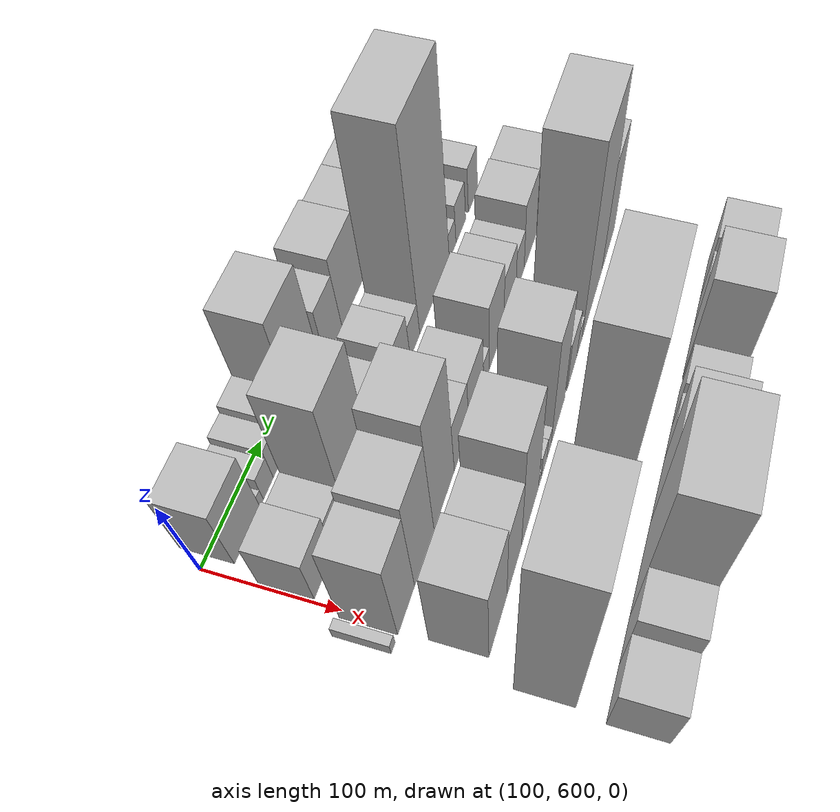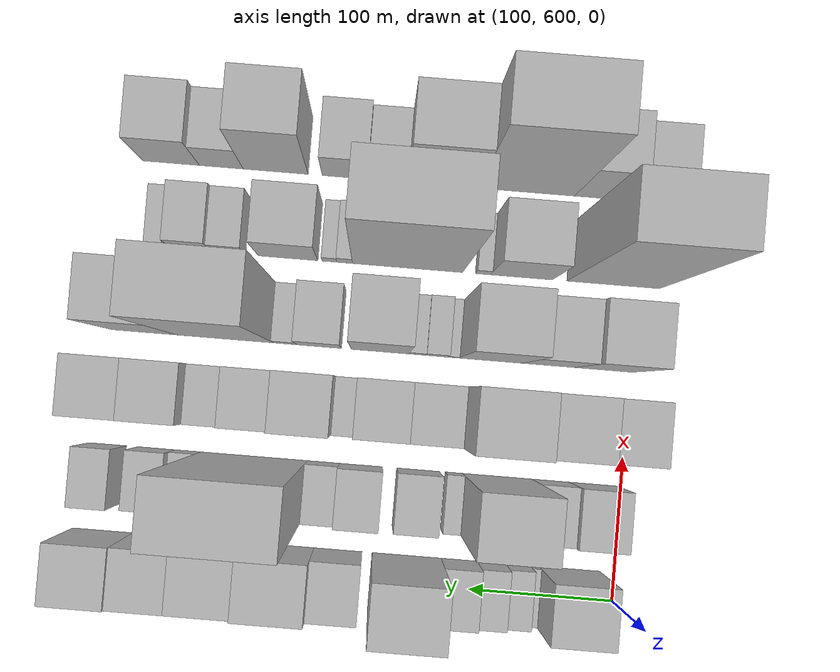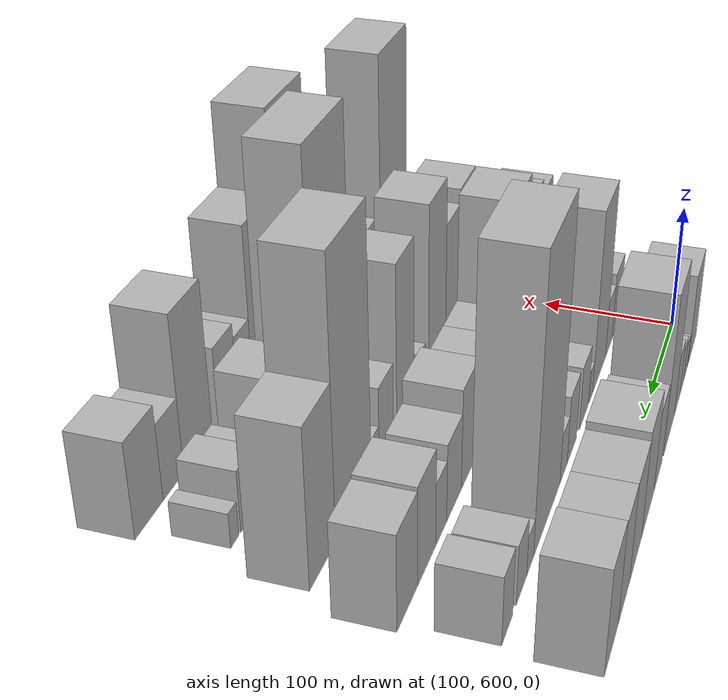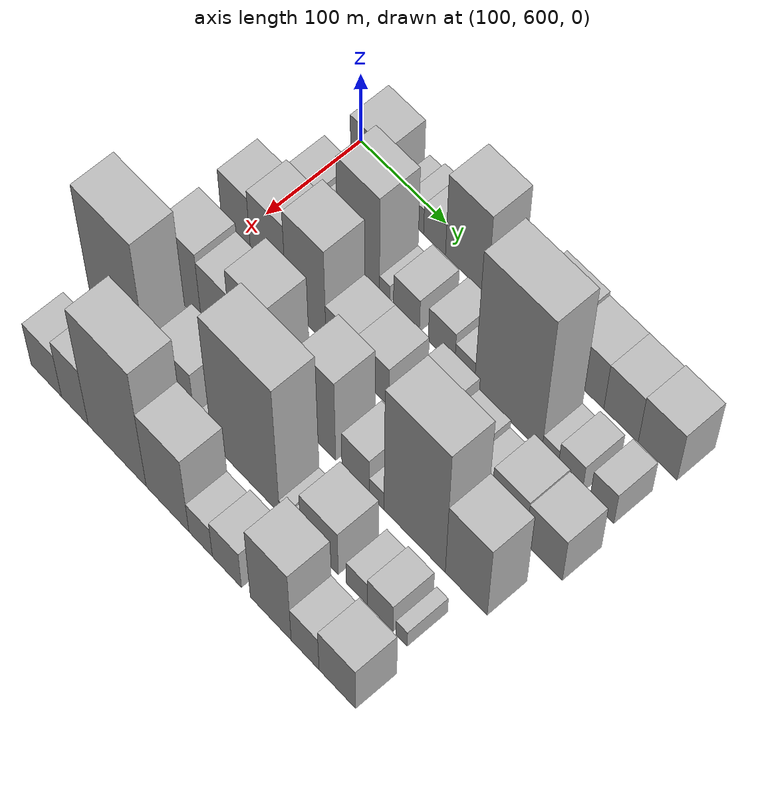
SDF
<sdf version="1.6">
 <world name="default">
  <model name="building_48">
   <static>1</static>
   <pose>100.0000 631.2782 0 0.000000 0.000000 0.000000</pose>
   <link name="link">
    <pose>0 0 37.50 0 0 0</pose>
    <collision name="collision"><geometry><box><size>40.0000 42.4311 75.0000</size></box></geometry></collision>
    <visual name="visual">
     <cast_shadows>0</cast_shadows>
     <geometry><box><size>40.0000 42.4311 75.0000</size></box></geometry>
     <material>
      <script>
       <uri>model://HANNAS_wall/materials/scripts</uri>
       <uri>model://HANNAS_wall/materials/textures</uri>
       <name>vrc/HANNAS_wall</name>
      </script>
     </material>
    </visual>
   </link>
  </model>
  <model name="building_49">
   <static>1</static>
   <pose>100.0000 655.4993 0 0.000000 0.000000 0.000000</pose>
   <link name="link">
    <pose>0 0 7.50 0 0 0</pose>
    <collision name="collision"><geometry><box><size>40.0000 6.0109 15.0000</size></box></geometry></collision>
    <visual name="visual">
     <cast_shadows>0</cast_shadows>
     <geometry><box><size>40.0000 6.0109 15.0000</size></box></geometry>
     <material>
      <script>
       <uri>model://HANNAS_wall/materials/scripts</uri>
       <uri>model://HANNAS_wall/materials/textures</uri>
       <name>vrc/HANNAS_wall</name>
      </script>
     </material>
    </visual>
   </link>
  </model>
  <model name="building_50">
   <static>1</static>
   <pose>100.0000 667.1177 0 0.000000 0.000000 0.000000</pose>
   <link name="link">
    <pose>0 0 15.00 0 0 0</pose>
    <collision name="collision"><geometry><box><size>40.0000 17.2259 30.0000</size></box></geometry></collision>
    <visual name="visual">
     <cast_shadows>0</cast_shadows>
     <geometry><box><size>40.0000 17.2259 30.0000</size></box></geometry>
     <material>
      <script>
       <uri>model://HANNAS_wall/materials/scripts</uri>
       <uri>model://HANNAS_wall/materials/textures</uri>
       <name>vrc/HANNAS_wall</name>
      </script>
     </material>
    </visual>
   </link>
  </model>
  <model name="building_51">
   <static>1</static>
   <pose>100.0000 685.6328 0 0.000000 0.000000 0.000000</pose>
   <link name="link">
    <pose>0 0 19.50 0 0 0</pose>
    <collision name="collision"><geometry><box><size>40.0000 19.8044 39.0000</size></box></geometry></collision>
    <visual name="visual">
     <cast_shadows>0</cast_shadows>
     <geometry><box><size>40.0000 19.8044 39.0000</size></box></geometry>
     <material>
      <script>
       <uri>model://HANNAS_wall/materials/scripts</uri>
       <uri>model://HANNAS_wall/materials/textures</uri>
       <name>vrc/HANNAS_wall</name>
      </script>
     </material>
    </visual>
   </link>
  </model>
  <model name="building_52">
   <static>1</static>
   <pose>100.0000 708.1960 0 0.000000 0.000000 0.000000</pose>
   <link name="link">
    <pose>0 0 24.00 0 0 0</pose>
    <collision name="collision"><geometry><box><size>40.0000 25.3219 48.0000</size></box></geometry></collision>
    <visual name="visual">
     <cast_shadows>0</cast_shadows>
     <geometry><box><size>40.0000 25.3219 48.0000</size></box></geometry>
     <material>
      <script>
       <uri>model://HANNAS_wall/materials/scripts</uri>
       <uri>model://HANNAS_wall/materials/textures</uri>
       <name>vrc/HANNAS_wall</name>
      </script>
     </material>
    </visual>
   </link>
  </model>
  <model name="building_53">
   <static>1</static>
   <pose>100.0000 744.9061 0 0.000000 0.000000 0.000000</pose>
   <link name="link">
    <pose>0 0 63.00 0 0 0</pose>
    <collision name="collision"><geometry><box><size>40.0000 48.0984 126.0000</size></box></geometry></collision>
    <visual name="visual">
     <cast_shadows>0</cast_shadows>
     <geometry><box><size>40.0000 48.0984 126.0000</size></box></geometry>
     <material>
      <script>
       <uri>model://HANNAS_wall/materials/scripts</uri>
       <uri>model://HANNAS_wall/materials/textures</uri>
       <name>vrc/HANNAS_wall</name>
      </script>
     </material>
    </visual>
   </link>
  </model>
  <model name="building_54">
   <static>1</static>
   <pose>100.0000 792.7015 0 0.000000 0.000000 0.000000</pose>
   <link name="link">
    <pose>0 0 31.50 0 0 0</pose>
    <collision name="collision"><geometry><box><size>40.0000 33.4924 63.0000</size></box></geometry></collision>
    <visual name="visual">
     <cast_shadows>0</cast_shadows>
     <geometry><box><size>40.0000 33.4924 63.0000</size></box></geometry>
     <material>
      <script>
       <uri>model://HANNAS_wall/materials/scripts</uri>
       <uri>model://HANNAS_wall/materials/textures</uri>
       <name>vrc/HANNAS_wall</name>
      </script>
     </material>
    </visual>
   </link>
  </model>
  <model name="building_55">
   <static>1</static>
   <pose>100.0000 832.7824 0 0.000000 0.000000 0.000000</pose>
   <link name="link">
    <pose>0 0 40.50 0 0 0</pose>
    <collision name="collision"><geometry><box><size>40.0000 46.6694 81.0000</size></box></geometry></collision>
    <visual name="visual">
     <cast_shadows>0</cast_shadows>
     <geometry><box><size>40.0000 46.6694 81.0000</size></box></geometry>
     <material>
      <script>
       <uri>model://HANNAS_wall/materials/scripts</uri>
       <uri>model://HANNAS_wall/materials/textures</uri>
       <name>vrc/HANNAS_wall</name>
      </script>
     </material>
    </visual>
   </link>
  </model>
  <model name="building_56">
   <static>1</static>
   <pose>100.0000 877.3833 0 0.000000 0.000000 0.000000</pose>
   <link name="link">
    <pose>0 0 37.50 0 0 0</pose>
    <collision name="collision"><geometry><box><size>40.0000 42.5324 75.0000</size></box></geometry></collision>
    <visual name="visual">
     <cast_shadows>0</cast_shadows>
     <geometry><box><size>40.0000 42.5324 75.0000</size></box></geometry>
     <material>
      <script>
       <uri>model://HANNAS_wall/materials/scripts</uri>
       <uri>model://HANNAS_wall/materials/textures</uri>
       <name>vrc/HANNAS_wall</name>
      </script>
     </material>
    </visual>
   </link>
  </model>
  <model name="building_57">
   <static>1</static>
   <pose>100.0000 917.4022 0 0.000000 0.000000 0.000000</pose>
   <link name="link">
    <pose>0 0 37.50 0 0 0</pose>
    <collision name="collision"><geometry><box><size>40.0000 37.5054 75.0000</size></box></geometry></collision>
    <visual name="visual">
     <cast_shadows>0</cast_shadows>
     <geometry><box><size>40.0000 37.5054 75.0000</size></box></geometry>
     <material>
      <script>
       <uri>model://HANNAS_wall/materials/scripts</uri>
       <uri>model://HANNAS_wall/materials/textures</uri>
       <name>vrc/HANNAS_wall</name>
      </script>
     </material>
    </visual>
   </link>
  </model>
  <model name="building_58">
   <static>1</static>
   <pose>100.0000 957.1171 0 0.000000 0.000000 0.000000</pose>
   <link name="link">
    <pose>0 0 39.00 0 0 0</pose>
    <collision name="collision"><geometry><box><size>40.0000 41.9244 78.0000</size></box></geometry></collision>
    <visual name="visual">
     <cast_shadows>0</cast_shadows>
     <geometry><box><size>40.0000 41.9244 78.0000</size></box></geometry>
     <material>
      <script>
       <uri>model://HANNAS_wall/materials/scripts</uri>
       <uri>model://HANNAS_wall/materials/textures</uri>
       <name>vrc/HANNAS_wall</name>
      </script>
     </material>
    </visual>
   </link>
  </model>
  <model name="building_106">
   <static>1</static>
   <pose>160.0000 619.1877 0 0.000000 0.000000 0.000000</pose>
   <link name="link">
    <pose>0 0 28.50 0 0 0</pose>
    <collision name="collision"><geometry><box><size>40.0000 33.5609 57.0000</size></box></geometry></collision>
    <visual name="visual">
     <cast_shadows>0</cast_shadows>
     <geometry><box><size>40.0000 33.5609 57.0000</size></box></geometry>
     <material>
      <script>
       <uri>model://HANNAS_wall/materials/scripts</uri>
       <uri>model://HANNAS_wall/materials/textures</uri>
       <name>vrc/HANNAS_wall</name>
      </script>
     </material>
    </visual>
   </link>
  </model>
  <model name="building_107">
   <static>1</static>
   <pose>160.0000 648.9834 0 0.000000 0.000000 0.000000</pose>
   <link name="link">
    <pose>0 0 24.00 0 0 0</pose>
    <collision name="collision"><geometry><box><size>40.0000 26.0305 48.0000</size></box></geometry></collision>
    <visual name="visual">
     <cast_shadows>0</cast_shadows>
     <geometry><box><size>40.0000 26.0305 48.0000</size></box></geometry>
     <material>
      <script>
       <uri>model://HANNAS_wall/materials/scripts</uri>
       <uri>model://HANNAS_wall/materials/textures</uri>
       <name>vrc/HANNAS_wall</name>
      </script>
     </material>
    </visual>
   </link>
  </model>
  <model name="building_108">
   <static>1</static>
   <pose>160.0000 686.3390 0 0.000000 0.000000 0.000000</pose>
   <link name="link">
    <pose>0 0 73.50 0 0 0</pose>
    <collision name="collision"><geometry><box><size>40.0000 48.6807 147.0000</size></box></geometry></collision>
    <visual name="visual">
     <cast_shadows>0</cast_shadows>
     <geometry><box><size>40.0000 48.6807 147.0000</size></box></geometry>
     <material>
      <script>
       <uri>model://HANNAS_wall/materials/scripts</uri>
       <uri>model://HANNAS_wall/materials/textures</uri>
       <name>vrc/HANNAS_wall</name>
      </script>
     </material>
    </visual>
   </link>
  </model>
  <model name="building_109">
   <static>1</static>
   <pose>160.0000 716.7340 0 0.000000 0.000000 0.000000</pose>
   <link name="link">
    <pose>0 0 13.50 0 0 0</pose>
    <collision name="collision"><geometry><box><size>40.0000 12.1093 27.0000</size></box></geometry></collision>
    <visual name="visual">
     <cast_shadows>0</cast_shadows>
     <geometry><box><size>40.0000 12.1093 27.0000</size></box></geometry>
     <material>
      <script>
       <uri>model://HANNAS_wall/materials/scripts</uri>
       <uri>model://HANNAS_wall/materials/textures</uri>
       <name>vrc/HANNAS_wall</name>
      </script>
     </material>
    </visual>
   </link>
  </model>
  <model name="building_110">
   <static>1</static>
   <pose>160.0000 741.7140 0 0.000000 0.000000 0.000000</pose>
   <link name="link">
    <pose>0 0 25.50 0 0 0</pose>
    <collision name="collision"><geometry><box><size>40.0000 29.8505 51.0000</size></box></geometry></collision>
    <visual name="visual">
     <cast_shadows>0</cast_shadows>
     <geometry><box><size>40.0000 29.8505 51.0000</size></box></geometry>
     <material>
      <script>
       <uri>model://HANNAS_wall/materials/scripts</uri>
       <uri>model://HANNAS_wall/materials/textures</uri>
       <name>vrc/HANNAS_wall</name>
      </script>
     </material>
    </visual>
   </link>
  </model>
  <model name="building_111">
   <static>1</static>
   <pose>160.0000 781.6407 0 0.000000 0.000000 0.000000</pose>
   <link name="link">
    <pose>0 0 27.00 0 0 0</pose>
    <collision name="collision"><geometry><box><size>40.0000 30.0029 54.0000</size></box></geometry></collision>
    <visual name="visual">
     <cast_shadows>0</cast_shadows>
     <geometry><box><size>40.0000 30.0029 54.0000</size></box></geometry>
     <material>
      <script>
       <uri>model://HANNAS_wall/materials/scripts</uri>
       <uri>model://HANNAS_wall/materials/textures</uri>
       <name>vrc/HANNAS_wall</name>
      </script>
     </material>
    </visual>
   </link>
  </model>
  <model name="building_112">
   <static>1</static>
   <pose>160.0000 807.7621 0 0.000000 0.000000 0.000000</pose>
   <link name="link">
    <pose>0 0 19.50 0 0 0</pose>
    <collision name="collision"><geometry><box><size>40.0000 22.2398 39.0000</size></box></geometry></collision>
    <visual name="visual">
     <cast_shadows>0</cast_shadows>
     <geometry><box><size>40.0000 22.2398 39.0000</size></box></geometry>
     <material>
      <script>
       <uri>model://HANNAS_wall/materials/scripts</uri>
       <uri>model://HANNAS_wall/materials/textures</uri>
       <name>vrc/HANNAS_wall</name>
      </script>
     </material>
    </visual>
   </link>
  </model>
  <model name="building_113">
   <static>1</static>
   <pose>160.0000 856.2191 0 0.000000 0.000000 0.000000</pose>
   <link name="link">
    <pose>0 0 108.00 0 0 0</pose>
    <collision name="collision"><geometry><box><size>40.0000 74.6743 216.0000</size></box></geometry></collision>
    <visual name="visual">
     <cast_shadows>0</cast_shadows>
     <geometry><box><size>40.0000 74.6743 216.0000</size></box></geometry>
     <material>
      <script>
       <uri>model://HANNAS_wall/materials/scripts</uri>
       <uri>model://HANNAS_wall/materials/textures</uri>
       <name>vrc/HANNAS_wall</name>
      </script>
     </material>
    </visual>
   </link>
  </model>
  <model name="building_114">
   <static>1</static>
   <pose>160.0000 902.4740 0 0.000000 0.000000 0.000000</pose>
   <link name="link">
    <pose>0 0 15.00 0 0 0</pose>
    <collision name="collision"><geometry><box><size>40.0000 17.8355 30.0000</size></box></geometry></collision>
    <visual name="visual">
     <cast_shadows>0</cast_shadows>
     <geometry><box><size>40.0000 17.8355 30.0000</size></box></geometry>
     <material>
      <script>
       <uri>model://HANNAS_wall/materials/scripts</uri>
       <uri>model://HANNAS_wall/materials/textures</uri>
       <name>vrc/HANNAS_wall</name>
      </script>
     </material>
    </visual>
   </link>
  </model>
  <model name="building_115">
   <static>1</static>
   <pose>160.0000 924.5829 0 0.000000 0.000000 0.000000</pose>
   <link name="link">
    <pose>0 0 22.50 0 0 0</pose>
    <collision name="collision"><geometry><box><size>40.0000 26.3824 45.0000</size></box></geometry></collision>
    <visual name="visual">
     <cast_shadows>0</cast_shadows>
     <geometry><box><size>40.0000 26.3824 45.0000</size></box></geometry>
     <material>
      <script>
       <uri>model://HANNAS_wall/materials/scripts</uri>
       <uri>model://HANNAS_wall/materials/textures</uri>
       <name>vrc/HANNAS_wall</name>
      </script>
     </material>
    </visual>
   </link>
  </model>
  <model name="building_116">
   <static>1</static>
   <pose>160.0000 958.8274 0 0.000000 0.000000 0.000000</pose>
   <link name="link">
    <pose>0 0 25.50 0 0 0</pose>
    <collision name="collision"><geometry><box><size>40.0000 26.1067 51.0000</size></box></geometry></collision>
    <visual name="visual">
     <cast_shadows>0</cast_shadows>
     <geometry><box><size>40.0000 26.1067 51.0000</size></box></geometry>
     <material>
      <script>
       <uri>model://HANNAS_wall/materials/scripts</uri>
       <uri>model://HANNAS_wall/materials/textures</uri>
       <name>vrc/HANNAS_wall</name>
      </script>
     </material>
    </visual>
   </link>
  </model>
  <model name="building_157">
   <static>1</static>
   <pose>220.0000 586.6365 0 0.000000 0.000000 0.000000</pose>
   <link name="link">
    <pose>0 0 7.50 0 0 0</pose>
    <collision name="collision"><geometry><box><size>40.0000 7.4755 15.0000</size></box></geometry></collision>
    <visual name="visual">
     <cast_shadows>0</cast_shadows>
     <geometry><box><size>40.0000 7.4755 15.0000</size></box></geometry>
     <material>
      <script>
       <uri>model://HANNAS_wall/materials/scripts</uri>
       <uri>model://HANNAS_wall/materials/textures</uri>
       <name>vrc/HANNAS_wall</name>
      </script>
     </material>
    </visual>
   </link>
  </model>
  <model name="building_158">
   <static>1</static>
   <pose>220.0000 612.2362 0 0.000000 0.000000 0.000000</pose>
   <link name="link">
    <pose>0 0 55.50 0 0 0</pose>
    <collision name="collision"><geometry><box><size>40.0000 33.7239 111.0000</size></box></geometry></collision>
    <visual name="visual">
     <cast_shadows>0</cast_shadows>
     <geometry><box><size>40.0000 33.7239 111.0000</size></box></geometry>
     <material>
      <script>
       <uri>model://HANNAS_wall/materials/scripts</uri>
       <uri>model://HANNAS_wall/materials/textures</uri>
       <name>vrc/HANNAS_wall</name>
      </script>
     </material>
    </visual>
   </link>
  </model>
  <model name="building_159">
   <static>1</static>
   <pose>220.0000 649.5706 0 0.000000 0.000000 0.000000</pose>
   <link name="link">
    <pose>0 0 61.50 0 0 0</pose>
    <collision name="collision"><geometry><box><size>40.0000 40.9449 123.0000</size></box></geometry></collision>
    <visual name="visual">
     <cast_shadows>0</cast_shadows>
     <geometry><box><size>40.0000 40.9449 123.0000</size></box></geometry>
     <material>
      <script>
       <uri>model://HANNAS_wall/materials/scripts</uri>
       <uri>model://HANNAS_wall/materials/textures</uri>
       <name>vrc/HANNAS_wall</name>
      </script>
     </material>
    </visual>
   </link>
  </model>
  <model name="building_160">
   <static>1</static>
   <pose>220.0000 693.0669 0 0.000000 0.000000 0.000000</pose>
   <link name="link">
    <pose>0 0 73.50 0 0 0</pose>
    <collision name="collision"><geometry><box><size>40.0000 46.0477 147.0000</size></box></geometry></collision>
    <visual name="visual">
     <cast_shadows>0</cast_shadows>
     <geometry><box><size>40.0000 46.0477 147.0000</size></box></geometry>
     <material>
      <script>
       <uri>model://HANNAS_wall/materials/scripts</uri>
       <uri>model://HANNAS_wall/materials/textures</uri>
       <name>vrc/HANNAS_wall</name>
      </script>
     </material>
    </visual>
   </link>
  </model>
  <model name="building_161">
   <static>1</static>
   <pose>220.0000 733.4533 0 0.000000 0.000000 0.000000</pose>
   <link name="link">
    <pose>0 0 31.50 0 0 0</pose>
    <collision name="collision"><geometry><box><size>40.0000 34.7250 63.0000</size></box></geometry></collision>
    <visual name="visual">
     <cast_shadows>0</cast_shadows>
     <geometry><box><size>40.0000 34.7250 63.0000</size></box></geometry>
     <material>
      <script>
       <uri>model://HANNAS_wall/materials/scripts</uri>
       <uri>model://HANNAS_wall/materials/textures</uri>
       <name>vrc/HANNAS_wall</name>
      </script>
     </material>
    </visual>
   </link>
  </model>
  <model name="building_162">
   <static>1</static>
   <pose>220.0000 769.5083 0 0.000000 0.000000 0.000000</pose>
   <link name="link">
    <pose>0 0 31.50 0 0 0</pose>
    <collision name="collision"><geometry><box><size>40.0000 37.3852 63.0000</size></box></geometry></collision>
    <visual name="visual">
     <cast_shadows>0</cast_shadows>
     <geometry><box><size>40.0000 37.3852 63.0000</size></box></geometry>
     <material>
      <script>
       <uri>model://HANNAS_wall/materials/scripts</uri>
       <uri>model://HANNAS_wall/materials/textures</uri>
       <name>vrc/HANNAS_wall</name>
      </script>
     </material>
    </visual>
   </link>
  </model>
  <model name="building_163">
   <static>1</static>
   <pose>220.0000 795.8028 0 0.000000 0.000000 0.000000</pose>
   <link name="link">
    <pose>0 0 15.00 0 0 0</pose>
    <collision name="collision"><geometry><box><size>40.0000 15.2037 30.0000</size></box></geometry></collision>
    <visual name="visual">
     <cast_shadows>0</cast_shadows>
     <geometry><box><size>40.0000 15.2037 30.0000</size></box></geometry>
     <material>
      <script>
       <uri>model://HANNAS_wall/materials/scripts</uri>
       <uri>model://HANNAS_wall/materials/textures</uri>
       <name>vrc/HANNAS_wall</name>
      </script>
     </material>
    </visual>
   </link>
  </model>
  <model name="building_164">
   <static>1</static>
   <pose>220.0000 823.3420 0 0.000000 0.000000 0.000000</pose>
   <link name="link">
    <pose>0 0 39.00 0 0 0</pose>
    <collision name="collision"><geometry><box><size>40.0000 39.8747 78.0000</size></box></geometry></collision>
    <visual name="visual">
     <cast_shadows>0</cast_shadows>
     <geometry><box><size>40.0000 39.8747 78.0000</size></box></geometry>
     <material>
      <script>
       <uri>model://HANNAS_wall/materials/scripts</uri>
       <uri>model://HANNAS_wall/materials/textures</uri>
       <name>vrc/HANNAS_wall</name>
      </script>
     </material>
    </visual>
   </link>
  </model>
  <model name="building_165">
   <static>1</static>
   <pose>220.0000 860.3663 0 0.000000 0.000000 0.000000</pose>
   <link name="link">
    <pose>0 0 30.00 0 0 0</pose>
    <collision name="collision"><geometry><box><size>40.0000 34.1740 60.0000</size></box></geometry></collision>
    <visual name="visual">
     <cast_shadows>0</cast_shadows>
     <geometry><box><size>40.0000 34.1740 60.0000</size></box></geometry>
     <material>
      <script>
       <uri>model://HANNAS_wall/materials/scripts</uri>
       <uri>model://HANNAS_wall/materials/textures</uri>
       <name>vrc/HANNAS_wall</name>
      </script>
     </material>
    </visual>
   </link>
  </model>
  <model name="building_166">
   <static>1</static>
   <pose>220.0000 889.5216 0 0.000000 0.000000 0.000000</pose>
   <link name="link">
    <pose>0 0 24.00 0 0 0</pose>
    <collision name="collision"><geometry><box><size>40.0000 24.1367 48.0000</size></box></geometry></collision>
    <visual name="visual">
     <cast_shadows>0</cast_shadows>
     <geometry><box><size>40.0000 24.1367 48.0000</size></box></geometry>
     <material>
      <script>
       <uri>model://HANNAS_wall/materials/scripts</uri>
       <uri>model://HANNAS_wall/materials/textures</uri>
       <name>vrc/HANNAS_wall</name>
      </script>
     </material>
    </visual>
   </link>
  </model>
  <model name="building_167">
   <static>1</static>
   <pose>220.0000 920.6134 0 0.000000 0.000000 0.000000</pose>
   <link name="link">
    <pose>0 0 37.50 0 0 0</pose>
    <collision name="collision"><geometry><box><size>40.0000 38.0468 75.0000</size></box></geometry></collision>
    <visual name="visual">
     <cast_shadows>0</cast_shadows>
     <geometry><box><size>40.0000 38.0468 75.0000</size></box></geometry>
     <material>
      <script>
       <uri>model://HANNAS_wall/materials/scripts</uri>
       <uri>model://HANNAS_wall/materials/textures</uri>
       <name>vrc/HANNAS_wall</name>
      </script>
     </material>
    </visual>
   </link>
  </model>
  <model name="building_168">
   <static>1</static>
   <pose>220.0000 959.4783 0 0.000000 0.000000 0.000000</pose>
   <link name="link">
    <pose>0 0 36.00 0 0 0</pose>
    <collision name="collision"><geometry><box><size>40.0000 39.6830 72.0000</size></box></geometry></collision>
    <visual name="visual">
     <cast_shadows>0</cast_shadows>
     <geometry><box><size>40.0000 39.6830 72.0000</size></box></geometry>
     <material>
      <script>
       <uri>model://HANNAS_wall/materials/scripts</uri>
       <uri>model://HANNAS_wall/materials/textures</uri>
       <name>vrc/HANNAS_wall</name>
      </script>
     </material>
    </visual>
   </link>
  </model>
  <model name="building_210">
   <static>1</static>
   <pose>280.0000 618.6021 0 0.000000 0.000000 0.000000</pose>
   <link name="link">
    <pose>0 0 55.50 0 0 0</pose>
    <collision name="collision"><geometry><box><size>40.0000 41.5093 111.0000</size></box></geometry></collision>
    <visual name="visual">
     <cast_shadows>0</cast_shadows>
     <geometry><box><size>40.0000 41.5093 111.0000</size></box></geometry>
     <material>
      <script>
       <uri>model://HANNAS_wall/materials/scripts</uri>
       <uri>model://HANNAS_wall/materials/textures</uri>
       <name>vrc/HANNAS_wall</name>
      </script>
     </material>
    </visual>
   </link>
  </model>
  <model name="building_211">
   <static>1</static>
   <pose>280.0000 657.3192 0 0.000000 0.000000 0.000000</pose>
   <link name="link">
    <pose>0 0 49.50 0 0 0</pose>
    <collision name="collision"><geometry><box><size>40.0000 35.9250 99.0000</size></box></geometry></collision>
    <visual name="visual">
     <cast_shadows>0</cast_shadows>
     <geometry><box><size>40.0000 35.9250 99.0000</size></box></geometry>
     <material>
      <script>
       <uri>model://HANNAS_wall/materials/scripts</uri>
       <uri>model://HANNAS_wall/materials/textures</uri>
       <name>vrc/HANNAS_wall</name>
      </script>
     </material>
    </visual>
   </link>
  </model>
  <model name="building_212">
   <static>1</static>
   <pose>280.0000 697.5575 0 0.000000 0.000000 0.000000</pose>
   <link name="link">
    <pose>0 0 69.00 0 0 0</pose>
    <collision name="collision"><geometry><box><size>40.0000 44.5516 138.0000</size></box></geometry></collision>
    <visual name="visual">
     <cast_shadows>0</cast_shadows>
     <geometry><box><size>40.0000 44.5516 138.0000</size></box></geometry>
     <material>
      <script>
       <uri>model://HANNAS_wall/materials/scripts</uri>
       <uri>model://HANNAS_wall/materials/textures</uri>
       <name>vrc/HANNAS_wall</name>
      </script>
     </material>
    </visual>
   </link>
  </model>
  <model name="building_213">
   <static>1</static>
   <pose>280.0000 723.5657 0 0.000000 0.000000 0.000000</pose>
   <link name="link">
    <pose>0 0 7.50 0 0 0</pose>
    <collision name="collision"><geometry><box><size>40.0000 7.4647 15.0000</size></box></geometry></collision>
    <visual name="visual">
     <cast_shadows>0</cast_shadows>
     <geometry><box><size>40.0000 7.4647 15.0000</size></box></geometry>
     <material>
      <script>
       <uri>model://HANNAS_wall/materials/scripts</uri>
       <uri>model://HANNAS_wall/materials/textures</uri>
       <name>vrc/HANNAS_wall</name>
      </script>
     </material>
    </visual>
   </link>
  </model>
  <model name="building_214">
   <static>1</static>
   <pose>280.0000 735.1990 0 0.000000 0.000000 0.000000</pose>
   <link name="link">
    <pose>0 0 15.00 0 0 0</pose>
    <collision name="collision"><geometry><box><size>40.0000 15.8019 30.0000</size></box></geometry></collision>
    <visual name="visual">
     <cast_shadows>0</cast_shadows>
     <geometry><box><size>40.0000 15.8019 30.0000</size></box></geometry>
     <material>
      <script>
       <uri>model://HANNAS_wall/materials/scripts</uri>
       <uri>model://HANNAS_wall/materials/textures</uri>
       <name>vrc/HANNAS_wall</name>
      </script>
     </material>
    </visual>
   </link>
  </model>
  <model name="building_215">
   <static>1</static>
   <pose>280.0000 749.0518 0 0.000000 0.000000 0.000000</pose>
   <link name="link">
    <pose>0 0 13.50 0 0 0</pose>
    <collision name="collision"><geometry><box><size>40.0000 11.9036 27.0000</size></box></geometry></collision>
    <visual name="visual">
     <cast_shadows>0</cast_shadows>
     <geometry><box><size>40.0000 11.9036 27.0000</size></box></geometry>
     <material>
      <script>
       <uri>model://HANNAS_wall/materials/scripts</uri>
       <uri>model://HANNAS_wall/materials/textures</uri>
       <name>vrc/HANNAS_wall</name>
      </script>
     </material>
    </visual>
   </link>
  </model>
  <model name="building_216">
   <static>1</static>
   <pose>280.0000 774.9124 0 0.000000 0.000000 0.000000</pose>
   <link name="link">
    <pose>0 0 66.00 0 0 0</pose>
    <collision name="collision"><geometry><box><size>40.0000 39.8175 132.0000</size></box></geometry></collision>
    <visual name="visual">
     <cast_shadows>0</cast_shadows>
     <geometry><box><size>40.0000 39.8175 132.0000</size></box></geometry>
     <material>
      <script>
       <uri>model://HANNAS_wall/materials/scripts</uri>
       <uri>model://HANNAS_wall/materials/textures</uri>
       <name>vrc/HANNAS_wall</name>
      </script>
     </material>
    </visual>
   </link>
  </model>
  <model name="building_217">
   <static>1</static>
   <pose>280.0000 817.2269 0 0.000000 0.000000 0.000000</pose>
   <link name="link">
    <pose>0 0 30.00 0 0 0</pose>
    <collision name="collision"><geometry><box><size>40.0000 30.8115 60.0000</size></box></geometry></collision>
    <visual name="visual">
     <cast_shadows>0</cast_shadows>
     <geometry><box><size>40.0000 30.8115 60.0000</size></box></geometry>
     <material>
      <script>
       <uri>model://HANNAS_wall/materials/scripts</uri>
       <uri>model://HANNAS_wall/materials/textures</uri>
       <name>vrc/HANNAS_wall</name>
      </script>
     </material>
    </visual>
   </link>
  </model>
  <model name="building_218">
   <static>1</static>
   <pose>280.0000 840.8599 0 0.000000 0.000000 0.000000</pose>
   <link name="link">
    <pose>0 0 15.00 0 0 0</pose>
    <collision name="collision"><geometry><box><size>40.0000 16.4546 30.0000</size></box></geometry></collision>
    <visual name="visual">
     <cast_shadows>0</cast_shadows>
     <geometry><box><size>40.0000 16.4546 30.0000</size></box></geometry>
     <material>
      <script>
       <uri>model://HANNAS_wall/materials/scripts</uri>
       <uri>model://HANNAS_wall/materials/textures</uri>
       <name>vrc/HANNAS_wall</name>
      </script>
     </material>
    </visual>
   </link>
  </model>
  <model name="building_219">
   <static>1</static>
   <pose>280.0000 882.9304 0 0.000000 0.000000 0.000000</pose>
   <link name="link">
    <pose>0 0 103.50 0 0 0</pose>
    <collision name="collision"><geometry><box><size>40.0000 67.6862 207.0000</size></box></geometry></collision>
    <visual name="visual">
     <cast_shadows>0</cast_shadows>
     <geometry><box><size>40.0000 67.6862 207.0000</size></box></geometry>
     <material>
      <script>
       <uri>model://HANNAS_wall/materials/scripts</uri>
       <uri>model://HANNAS_wall/materials/textures</uri>
       <name>vrc/HANNAS_wall</name>
      </script>
     </material>
    </visual>
   </link>
  </model>
  <model name="building_220">
   <static>1</static>
   <pose>280.0000 939.5464 0 0.000000 0.000000 0.000000</pose>
   <link name="link">
    <pose>0 0 60.00 0 0 0</pose>
    <collision name="collision"><geometry><box><size>40.0000 45.5458 120.0000</size></box></geometry></collision>
    <visual name="visual">
     <cast_shadows>0</cast_shadows>
     <geometry><box><size>40.0000 45.5458 120.0000</size></box></geometry>
     <material>
      <script>
       <uri>model://HANNAS_wall/materials/scripts</uri>
       <uri>model://HANNAS_wall/materials/textures</uri>
       <name>vrc/HANNAS_wall</name>
      </script>
     </material>
    </visual>
   </link>
  </model>
  <model name="building_262">
   <static>1</static>
   <pose>340.0000 615.9587 0 0.000000 0.000000 0.000000</pose>
   <link name="link">
    <pose>0 0 106.50 0 0 0</pose>
    <collision name="collision"><geometry><box><size>40.0000 65.2022 213.0000</size></box></geometry></collision>
    <visual name="visual">
     <cast_shadows>0</cast_shadows>
     <geometry><box><size>40.0000 65.2022 213.0000</size></box></geometry>
     <material>
      <script>
       <uri>model://HANNAS_wall/materials/scripts</uri>
       <uri>model://HANNAS_wall/materials/textures</uri>
       <name>vrc/HANNAS_wall</name>
      </script>
     </material>
    </visual>
   </link>
  </model>
  <model name="building_263">
   <static>1</static>
   <pose>340.0000 680.4985 0 0.000000 0.000000 0.000000</pose>
   <link name="link">
    <pose>0 0 43.50 0 0 0</pose>
    <collision name="collision"><geometry><box><size>40.0000 43.8773 87.0000</size></box></geometry></collision>
    <visual name="visual">
     <cast_shadows>0</cast_shadows>
     <geometry><box><size>40.0000 43.8773 87.0000</size></box></geometry>
     <material>
      <script>
       <uri>model://HANNAS_wall/materials/scripts</uri>
       <uri>model://HANNAS_wall/materials/textures</uri>
       <name>vrc/HANNAS_wall</name>
      </script>
     </material>
    </visual>
   </link>
  </model>
  <model name="building_264">
   <static>1</static>
   <pose>340.0000 707.5894 0 0.000000 0.000000 0.000000</pose>
   <link name="link">
    <pose>0 0 10.50 0 0 0</pose>
    <collision name="collision"><geometry><box><size>40.0000 10.3046 21.0000</size></box></geometry></collision>
    <visual name="visual">
     <cast_shadows>0</cast_shadows>
     <geometry><box><size>40.0000 10.3046 21.0000</size></box></geometry>
     <material>
      <script>
       <uri>model://HANNAS_wall/materials/scripts</uri>
       <uri>model://HANNAS_wall/materials/textures</uri>
       <name>vrc/HANNAS_wall</name>
      </script>
     </material>
    </visual>
   </link>
  </model>
  <model name="building_265">
   <static>1</static>
   <pose>340.0000 760.4077 0 0.000000 0.000000 0.000000</pose>
   <link name="link">
    <pose>0 0 105.00 0 0 0</pose>
    <collision name="collision"><geometry><box><size>40.0000 77.3319 210.0000</size></box></geometry></collision>
    <visual name="visual">
     <cast_shadows>0</cast_shadows>
     <geometry><box><size>40.0000 77.3319 210.0000</size></box></geometry>
     <material>
      <script>
       <uri>model://HANNAS_wall/materials/scripts</uri>
       <uri>model://HANNAS_wall/materials/textures</uri>
       <name>vrc/HANNAS_wall</name>
      </script>
     </material>
    </visual>
   </link>
  </model>
  <model name="building_266">
   <static>1</static>
   <pose>340.0000 804.5996 0 0.000000 0.000000 0.000000</pose>
   <link name="link">
    <pose>0 0 12.00 0 0 0</pose>
    <collision name="collision"><geometry><box><size>40.0000 11.0520 24.0000</size></box></geometry></collision>
    <visual name="visual">
     <cast_shadows>0</cast_shadows>
     <geometry><box><size>40.0000 11.0520 24.0000</size></box></geometry>
     <material>
      <script>
       <uri>model://HANNAS_wall/materials/scripts</uri>
       <uri>model://HANNAS_wall/materials/textures</uri>
       <name>vrc/HANNAS_wall</name>
      </script>
     </material>
    </visual>
   </link>
  </model>
  <model name="building_267">
   <static>1</static>
   <pose>340.0000 815.2268 0 0.000000 0.000000 0.000000</pose>
   <link name="link">
    <pose>0 0 10.50 0 0 0</pose>
    <collision name="collision"><geometry><box><size>40.0000 10.2025 21.0000</size></box></geometry></collision>
    <visual name="visual">
     <cast_shadows>0</cast_shadows>
     <geometry><box><size>40.0000 10.2025 21.0000</size></box></geometry>
     <material>
      <script>
       <uri>model://HANNAS_wall/materials/scripts</uri>
       <uri>model://HANNAS_wall/materials/textures</uri>
       <name>vrc/HANNAS_wall</name>
      </script>
     </material>
    </visual>
   </link>
  </model>
  <model name="building_268">
   <static>1</static>
   <pose>340.0000 844.2635 0 0.000000 0.000000 0.000000</pose>
   <link name="link">
    <pose>0 0 37.50 0 0 0</pose>
    <collision name="collision"><geometry><box><size>40.0000 41.8707 75.0000</size></box></geometry></collision>
    <visual name="visual">
     <cast_shadows>0</cast_shadows>
     <geometry><box><size>40.0000 41.8707 75.0000</size></box></geometry>
     <material>
      <script>
       <uri>model://HANNAS_wall/materials/scripts</uri>
       <uri>model://HANNAS_wall/materials/textures</uri>
       <name>vrc/HANNAS_wall</name>
      </script>
     </material>
    </visual>
   </link>
  </model>
  <model name="building_269">
   <static>1</static>
   <pose>340.0000 885.7918 0 0.000000 0.000000 0.000000</pose>
   <link name="link">
    <pose>0 0 19.50 0 0 0</pose>
    <collision name="collision"><geometry><box><size>40.0000 23.1860 39.0000</size></box></geometry></collision>
    <visual name="visual">
     <cast_shadows>0</cast_shadows>
     <geometry><box><size>40.0000 23.1860 39.0000</size></box></geometry>
     <material>
      <script>
       <uri>model://HANNAS_wall/materials/scripts</uri>
       <uri>model://HANNAS_wall/materials/textures</uri>
       <name>vrc/HANNAS_wall</name>
      </script>
     </material>
    </visual>
   </link>
  </model>
  <model name="building_270">
   <static>1</static>
   <pose>340.0000 911.4681 0 0.000000 0.000000 0.000000</pose>
   <link name="link">
    <pose>0 0 24.00 0 0 0</pose>
    <collision name="collision"><geometry><box><size>40.0000 28.1666 48.0000</size></box></geometry></collision>
    <visual name="visual">
     <cast_shadows>0</cast_shadows>
     <geometry><box><size>40.0000 28.1666 48.0000</size></box></geometry>
     <material>
      <script>
       <uri>model://HANNAS_wall/materials/scripts</uri>
       <uri>model://HANNAS_wall/materials/textures</uri>
       <name>vrc/HANNAS_wall</name>
      </script>
     </material>
    </visual>
   </link>
  </model>
  <model name="building_271">
   <static>1</static>
   <pose>340.0000 934.8178 0 0.000000 0.000000 0.000000</pose>
   <link name="link">
    <pose>0 0 13.50 0 0 0</pose>
    <collision name="collision"><geometry><box><size>40.0000 12.5328 27.0000</size></box></geometry></collision>
    <visual name="visual">
     <cast_shadows>0</cast_shadows>
     <geometry><box><size>40.0000 12.5328 27.0000</size></box></geometry>
     <material>
      <script>
       <uri>model://HANNAS_wall/materials/scripts</uri>
       <uri>model://HANNAS_wall/materials/textures</uri>
       <name>vrc/HANNAS_wall</name>
      </script>
     </material>
    </visual>
   </link>
  </model>
  <model name="building_313">
   <static>1</static>
   <pose>400.0000 597.3429 0 0.000000 0.000000 0.000000</pose>
   <link name="link">
    <pose>0 0 34.50 0 0 0</pose>
    <collision name="collision"><geometry><box><size>40.0000 36.6406 69.0000</size></box></geometry></collision>
    <visual name="visual">
     <cast_shadows>0</cast_shadows>
     <geometry><box><size>40.0000 36.6406 69.0000</size></box></geometry>
     <material>
      <script>
       <uri>model://HANNAS_wall/materials/scripts</uri>
       <uri>model://HANNAS_wall/materials/textures</uri>
       <name>vrc/HANNAS_wall</name>
      </script>
     </material>
    </visual>
   </link>
  </model>
  <model name="building_314">
   <static>1</static>
   <pose>400.0000 631.6851 0 0.000000 0.000000 0.000000</pose>
   <link name="link">
    <pose>0 0 46.50 0 0 0</pose>
    <collision name="collision"><geometry><box><size>40.0000 32.0437 93.0000</size></box></geometry></collision>
    <visual name="visual">
     <cast_shadows>0</cast_shadows>
     <geometry><box><size>40.0000 32.0437 93.0000</size></box></geometry>
     <material>
      <script>
       <uri>model://HANNAS_wall/materials/scripts</uri>
       <uri>model://HANNAS_wall/materials/textures</uri>
       <name>vrc/HANNAS_wall</name>
      </script>
     </material>
    </visual>
   </link>
  </model>
  <model name="building_315">
   <static>1</static>
   <pose>400.0000 681.8415 0 0.000000 0.000000 0.000000</pose>
   <link name="link">
    <pose>0 0 96.00 0 0 0</pose>
    <collision name="collision"><geometry><box><size>40.0000 68.2693 192.0000</size></box></geometry></collision>
    <visual name="visual">
     <cast_shadows>0</cast_shadows>
     <geometry><box><size>40.0000 68.2693 192.0000</size></box></geometry>
     <material>
      <script>
       <uri>model://HANNAS_wall/materials/scripts</uri>
       <uri>model://HANNAS_wall/materials/textures</uri>
       <name>vrc/HANNAS_wall</name>
      </script>
     </material>
    </visual>
   </link>
  </model>
  <model name="building_316">
   <static>1</static>
   <pose>400.0000 740.7298 0 0.000000 0.000000 0.000000</pose>
   <link name="link">
    <pose>0 0 63.00 0 0 0</pose>
    <collision name="collision"><geometry><box><size>40.0000 49.5073 126.0000</size></box></geometry></collision>
    <visual name="visual">
     <cast_shadows>0</cast_shadows>
     <geometry><box><size>40.0000 49.5073 126.0000</size></box></geometry>
     <material>
      <script>
       <uri>model://HANNAS_wall/materials/scripts</uri>
       <uri>model://HANNAS_wall/materials/textures</uri>
       <name>vrc/HANNAS_wall</name>
      </script>
     </material>
    </visual>
   </link>
  </model>
  <model name="building_317">
   <static>1</static>
   <pose>400.0000 778.9212 0 0.000000 0.000000 0.000000</pose>
   <link name="link">
    <pose>0 0 25.50 0 0 0</pose>
    <collision name="collision"><geometry><box><size>40.0000 26.8754 51.0000</size></box></geometry></collision>
    <visual name="visual">
     <cast_shadows>0</cast_shadows>
     <geometry><box><size>40.0000 26.8754 51.0000</size></box></geometry>
     <material>
      <script>
       <uri>model://HANNAS_wall/materials/scripts</uri>
       <uri>model://HANNAS_wall/materials/textures</uri>
       <name>vrc/HANNAS_wall</name>
      </script>
     </material>
    </visual>
   </link>
  </model>
  <model name="building_318">
   <static>1</static>
   <pose>400.0000 808.7903 0 0.000000 0.000000 0.000000</pose>
   <link name="link">
    <pose>0 0 31.50 0 0 0</pose>
    <collision name="collision"><geometry><box><size>40.0000 32.8629 63.0000</size></box></geometry></collision>
    <visual name="visual">
     <cast_shadows>0</cast_shadows>
     <geometry><box><size>40.0000 32.8629 63.0000</size></box></geometry>
     <material>
      <script>
       <uri>model://HANNAS_wall/materials/scripts</uri>
       <uri>model://HANNAS_wall/materials/textures</uri>
       <name>vrc/HANNAS_wall</name>
      </script>
     </material>
    </visual>
   </link>
  </model>
  <model name="building_319">
   <static>1</static>
   <pose>400.0000 858.0621 0 0.000000 0.000000 0.000000</pose>
   <link name="link">
    <pose>0 0 61.50 0 0 0</pose>
    <collision name="collision"><geometry><box><size>40.0000 45.6807 123.0000</size></box></geometry></collision>
    <visual name="visual">
     <cast_shadows>0</cast_shadows>
     <geometry><box><size>40.0000 45.6807 123.0000</size></box></geometry>
     <material>
      <script>
       <uri>model://HANNAS_wall/materials/scripts</uri>
       <uri>model://HANNAS_wall/materials/textures</uri>
       <name>vrc/HANNAS_wall</name>
      </script>
     </material>
    </visual>
   </link>
  </model>
  <model name="building_320">
   <static>1</static>
   <pose>400.0000 896.2830 0 0.000000 0.000000 0.000000</pose>
   <link name="link">
    <pose>0 0 30.00 0 0 0</pose>
    <collision name="collision"><geometry><box><size>40.0000 30.7611 60.0000</size></box></geometry></collision>
    <visual name="visual">
     <cast_shadows>0</cast_shadows>
     <geometry><box><size>40.0000 30.7611 60.0000</size></box></geometry>
     <material>
      <script>
       <uri>model://HANNAS_wall/materials/scripts</uri>
       <uri>model://HANNAS_wall/materials/textures</uri>
       <name>vrc/HANNAS_wall</name>
      </script>
     </material>
    </visual>
   </link>
  </model>
  <model name="building_321">
   <static>1</static>
   <pose>400.0000 931.6726 0 0.000000 0.000000 0.000000</pose>
   <link name="link">
    <pose>0 0 37.50 0 0 0</pose>
    <collision name="collision"><geometry><box><size>40.0000 40.0180 75.0000</size></box></geometry></collision>
    <visual name="visual">
     <cast_shadows>0</cast_shadows>
     <geometry><box><size>40.0000 40.0180 75.0000</size></box></geometry>
     <material>
      <script>
       <uri>model://HANNAS_wall/materials/scripts</uri>
       <uri>model://HANNAS_wall/materials/textures</uri>
       <name>vrc/HANNAS_wall</name>
      </script>
     </material>
    </visual>
   </link>
  </model>
 </world>
</sdf>
